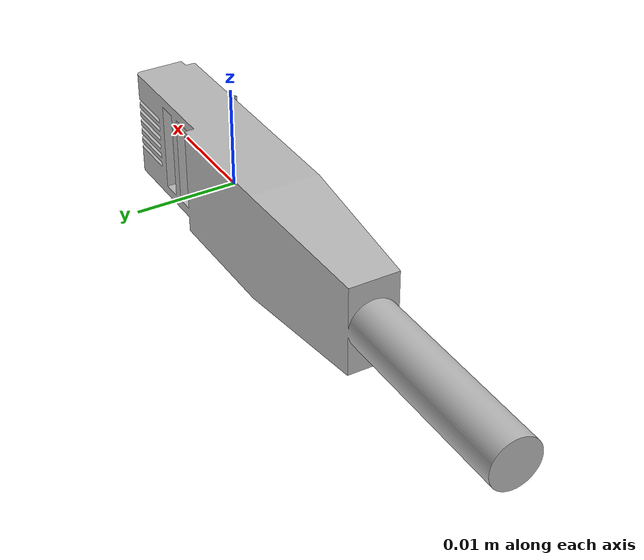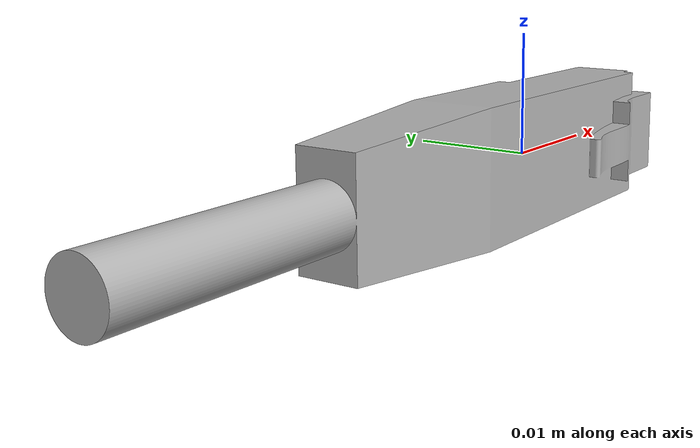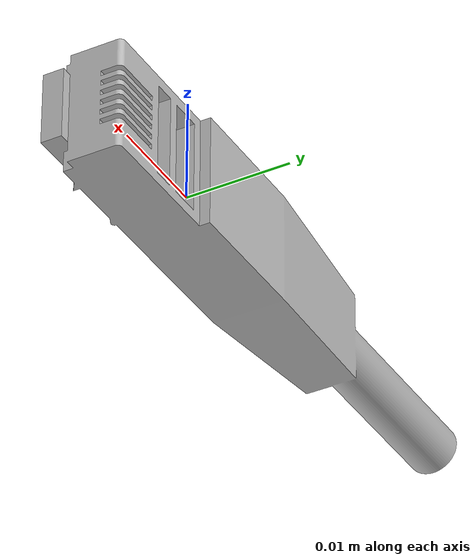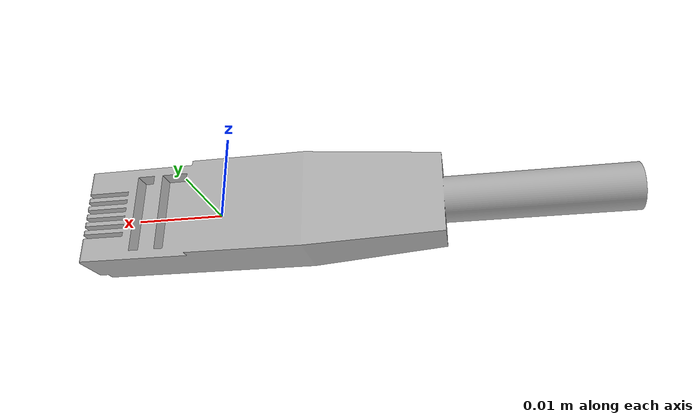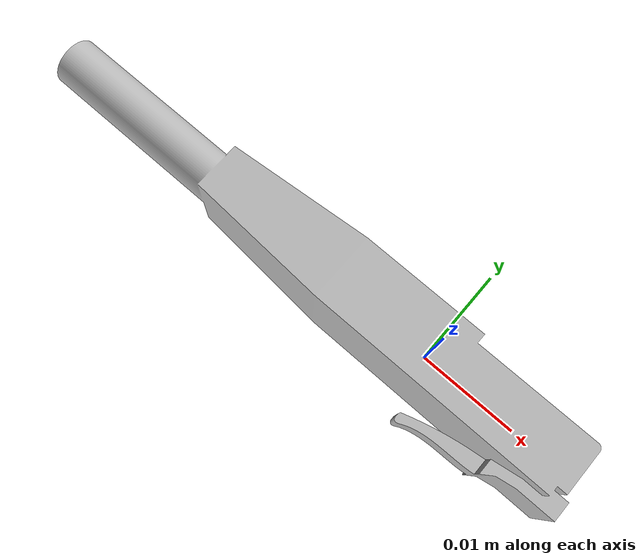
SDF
<?xml version='1.0'?>
<sdf version='1.4'>
  <model name="rj45_m">
    <pose>0 0 0 0 0 0</pose>
      <link name="body">
      <inertial>
        <!-- Volume-->
        <mass> 0.01 </mass>

        <!-- Center of mass: -->
        <pose>-0.007951 -0.000067 -0.000005 0 0 0</pose>

        <!-- Inertia matrix (-->
        <inertia>
          <ixx>  0 </ixx>
          <ixy>  0 </ixy>
          <ixz>  0 </ixz>
          <iyy>  0 </iyy>
          <iyz>  0 </iyz>
          <izz>  0 </izz>
        </inertia>
      </inertial>

        <visual name="visual">
          <geometry>
            <mesh><uri>model://industrial-components/rj45_m/rj45_m.dae</uri></mesh>
          </geometry>
        </visual>

        <collision name="collision">
          <geometry>
            <mesh><uri>model://industrial-components/rj45_m/rj45_m.dae</uri></mesh>
          </geometry>
          <max_contacts>10</max_contacts>
          <surface>
            <friction>
              <ode>
                <mu>0.8</mu>
                <mu2>0.8</mu2>
                <slip1>0</slip1>
                <slip2>0</slip2>
              </ode>
              <torsional>
                <ode/>
              </torsional>
            </friction>
            <contact>
              <ode>
                <kp>1000000.0</kp>
                <kd>1.0</kd>
                <max_vel>0.0</max_vel>
              </ode>
            </contact>
          </surface>
        </collision>
      </link>
  </model>
</sdf>
